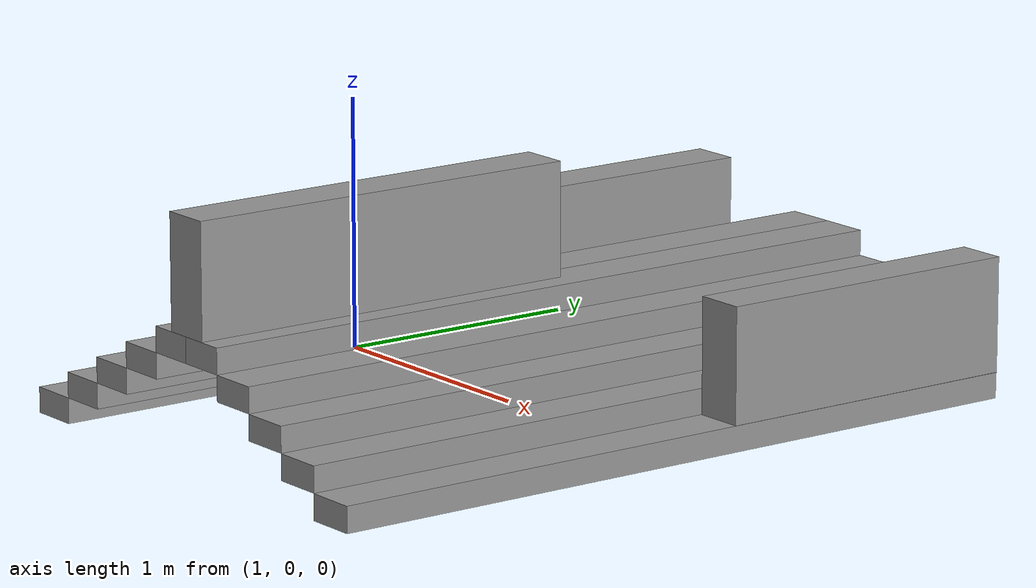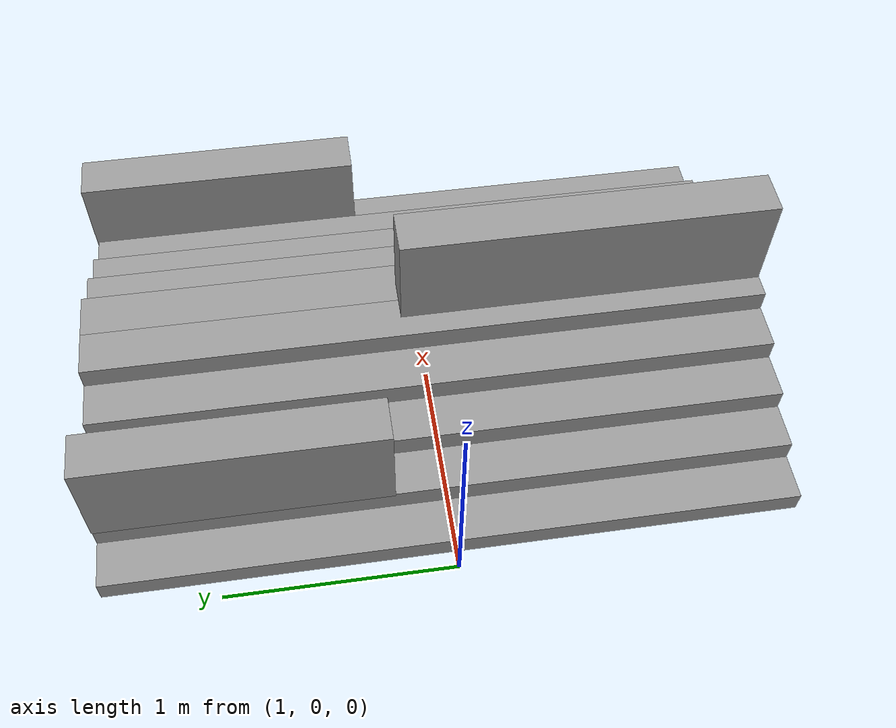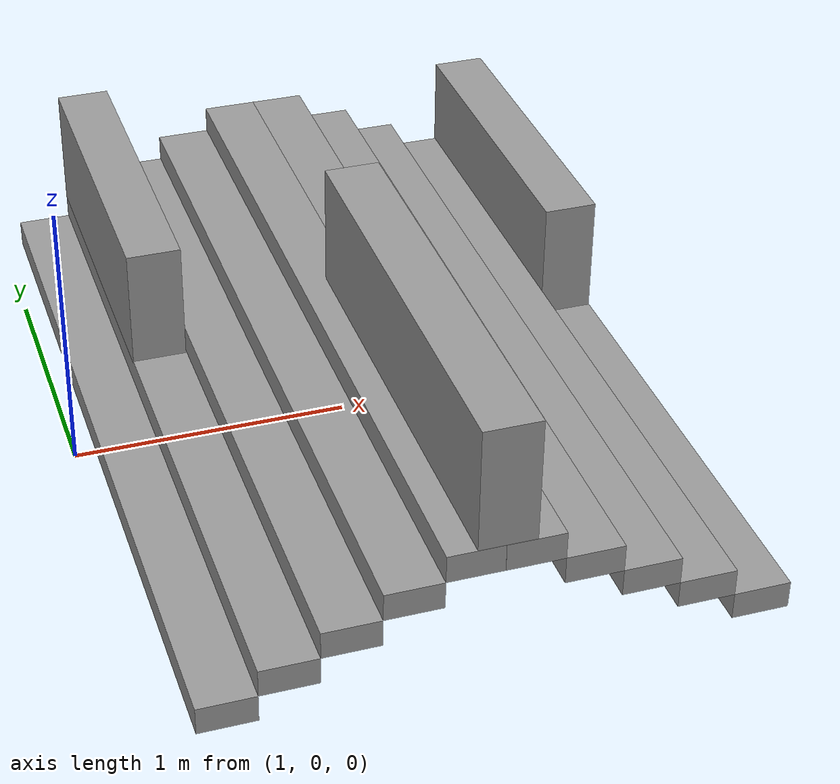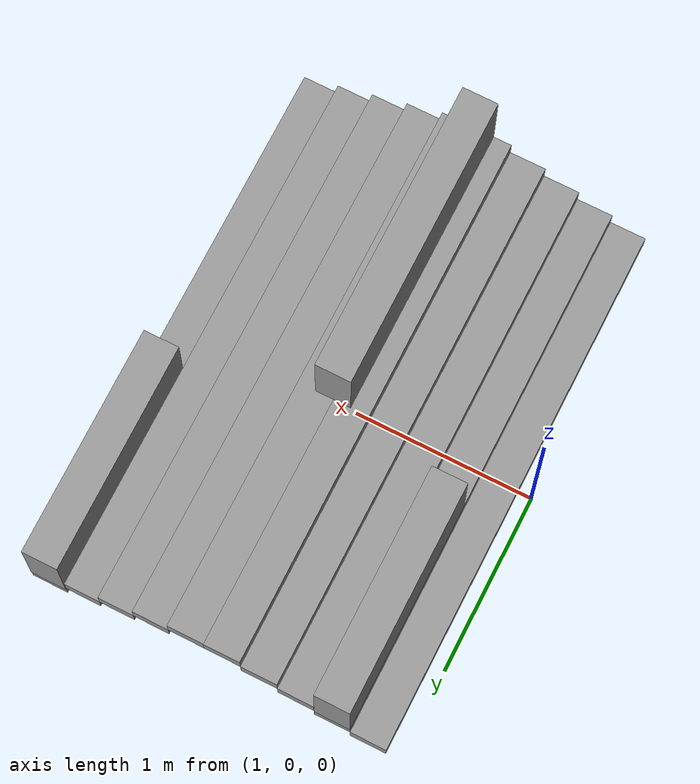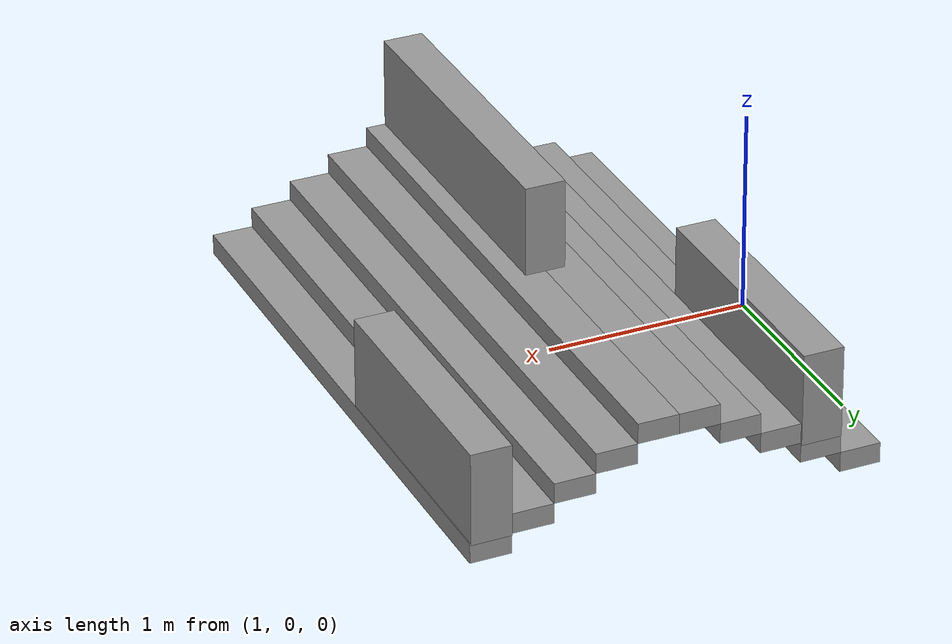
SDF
<?xml version='1.0'?>
<sdf version='1.7'>
  <model name='stairs_obstacle'>
    <link name='Stairs_2'>
      <self_collide>0</self_collide>
      <enable_wind>0</enable_wind>
      <kinematic>0</kinematic>
      <pose>0 0 0 0 -0 0</pose>
      <visual name='Stairs_2_Visual_0'>
        <pose>1.175 -0 0.05 0 -0 1.5708</pose>
        <geometry>
          <box>
            <size>3 0.2 0.1</size>
          </box>
        </geometry>
        <material>
          <script>
            <uri>file://media/materials/scripts/gazebo.material</uri>
            <name>Gazebo/Grey</name>
          </script>
          <ambient>1 1 1 1</ambient>
          <shader type='pixel'/>
        </material>
        <meta>
          <layer>0</layer>
        </meta>
        <transparency>0</transparency>
        <cast_shadows>1</cast_shadows>
      </visual>
      <visual name='Stairs_2_Visual_4'>
        <pose>1.975 0 0.45 0 -0 1.5708</pose>
        <geometry>
          <box>
            <size>3 0.2 0.1</size>
          </box>
        </geometry>
        <material>
          <script>
            <uri>file://media/materials/scripts/gazebo.material</uri>
            <name>Gazebo/Grey</name>
          </script>
          <ambient>1 1 1 1</ambient>
          <shader type='pixel'/>
        </material>
        <meta>
          <layer>0</layer>
        </meta>
        <transparency>0</transparency>
        <cast_shadows>1</cast_shadows>
      </visual>
      <visual name='Stairs_2_Visual_2'>
        <pose>1.575 -0 0.25 0 -0 1.5708</pose>
        <geometry>
          <box>
            <size>3 0.2 0.1</size>
          </box>
        </geometry>
        <material>
          <script>
            <uri>file://media/materials/scripts/gazebo.material</uri>
            <name>Gazebo/Grey</name>
          </script>
          <ambient>1 1 1 1</ambient>
          <shader type='pixel'/>
        </material>
        <meta>
          <layer>0</layer>
        </meta>
        <transparency>0</transparency>
        <cast_shadows>1</cast_shadows>
      </visual>
      <visual name='Stairs_2_Visual_1'>
        <pose>1.375 -0 0.15 0 -0 1.5708</pose>
        <geometry>
          <box>
            <size>3 0.2 0.1</size>
          </box>
        </geometry>
        <material>
          <script>
            <uri>file://media/materials/scripts/gazebo.material</uri>
            <name>Gazebo/Grey</name>
          </script>
          <ambient>1 1 1 1</ambient>
          <shader type='pixel'/>
        </material>
        <meta>
          <layer>0</layer>
        </meta>
        <transparency>0</transparency>
        <cast_shadows>1</cast_shadows>
      </visual>
      <visual name='Stairs_2_Visual_3'>
        <pose>1.775 -0 0.35 0 -0 1.5708</pose>
        <geometry>
          <box>
            <size>3 0.2 0.1</size>
          </box>
        </geometry>
        <material>
          <script>
            <uri>file://media/materials/scripts/gazebo.material</uri>
            <name>Gazebo/Grey</name>
          </script>
          <ambient>1 1 1 1</ambient>
          <shader type='pixel'/>
        </material>
        <meta>
          <layer>0</layer>
        </meta>
        <transparency>0</transparency>
        <cast_shadows>1</cast_shadows>
      </visual>
      <collision name='Stairs_2_Collision_3'>
        <laser_retro>0</laser_retro>
        <max_contacts>10</max_contacts>
        <pose>1.775 0 0.35 0 -0 1.5708</pose>
        <geometry>
          <box>
            <size>3 0.2 0.1</size>
          </box>
        </geometry>
        <surface>
          <friction>
            <ode>
              <mu>1</mu>
              <mu2>1</mu2>
              <fdir1>0 0 0</fdir1>
              <slip1>0</slip1>
              <slip2>0</slip2>
            </ode>
            <torsional>
              <coefficient>1</coefficient>
              <patch_radius>0</patch_radius>
              <surface_radius>0</surface_radius>
              <use_patch_radius>1</use_patch_radius>
              <ode>
                <slip>0</slip>
              </ode>
            </torsional>
          </friction>
          <bounce>
            <restitution_coefficient>0</restitution_coefficient>
            <threshold>1e+06</threshold>
          </bounce>
          <contact>
            <collide_without_contact>0</collide_without_contact>
            <collide_without_contact_bitmask>1</collide_without_contact_bitmask>
            <collide_bitmask>1</collide_bitmask>
            <ode>
              <soft_cfm>0</soft_cfm>
              <soft_erp>0.2</soft_erp>
              <kp>1e+13</kp>
              <kd>1</kd>
              <max_vel>0.01</max_vel>
              <min_depth>0</min_depth>
            </ode>
            <bullet>
              <split_impulse>1</split_impulse>
              <split_impulse_penetration_threshold>-0.01</split_impulse_penetration_threshold>
              <soft_cfm>0</soft_cfm>
              <soft_erp>0.2</soft_erp>
              <kp>1e+13</kp>
              <kd>1</kd>
            </bullet>
          </contact>
        </surface>
      </collision>
      <collision name='Stairs_2_Collision_0'>
        <laser_retro>0</laser_retro>
        <max_contacts>10</max_contacts>
        <pose>1.175 0 0.05 0 -0 1.5708</pose>
        <geometry>
          <box>
            <size>3 0.2 0.1</size>
          </box>
        </geometry>
        <surface>
          <friction>
            <ode>
              <mu>1</mu>
              <mu2>1</mu2>
              <fdir1>0 0 0</fdir1>
              <slip1>0</slip1>
              <slip2>0</slip2>
            </ode>
            <torsional>
              <coefficient>1</coefficient>
              <patch_radius>0</patch_radius>
              <surface_radius>0</surface_radius>
              <use_patch_radius>1</use_patch_radius>
              <ode>
                <slip>0</slip>
              </ode>
            </torsional>
          </friction>
          <bounce>
            <restitution_coefficient>0</restitution_coefficient>
            <threshold>1e+06</threshold>
          </bounce>
          <contact>
            <collide_without_contact>0</collide_without_contact>
            <collide_without_contact_bitmask>1</collide_without_contact_bitmask>
            <collide_bitmask>1</collide_bitmask>
            <ode>
              <soft_cfm>0</soft_cfm>
              <soft_erp>0.2</soft_erp>
              <kp>1e+13</kp>
              <kd>1</kd>
              <max_vel>0.01</max_vel>
              <min_depth>0</min_depth>
            </ode>
            <bullet>
              <split_impulse>1</split_impulse>
              <split_impulse_penetration_threshold>-0.01</split_impulse_penetration_threshold>
              <soft_cfm>0</soft_cfm>
              <soft_erp>0.2</soft_erp>
              <kp>1e+13</kp>
              <kd>1</kd>
            </bullet>
          </contact>
        </surface>
      </collision>
      <collision name='Stairs_2_Collision_2'>
        <laser_retro>0</laser_retro>
        <max_contacts>10</max_contacts>
        <pose>1.575 0 0.25 0 -0 1.5708</pose>
        <geometry>
          <box>
            <size>3 0.2 0.1</size>
          </box>
        </geometry>
        <surface>
          <friction>
            <ode>
              <mu>1</mu>
              <mu2>1</mu2>
              <fdir1>0 0 0</fdir1>
              <slip1>0</slip1>
              <slip2>0</slip2>
            </ode>
            <torsional>
              <coefficient>1</coefficient>
              <patch_radius>0</patch_radius>
              <surface_radius>0</surface_radius>
              <use_patch_radius>1</use_patch_radius>
              <ode>
                <slip>0</slip>
              </ode>
            </torsional>
          </friction>
          <bounce>
            <restitution_coefficient>0</restitution_coefficient>
            <threshold>1e+06</threshold>
          </bounce>
          <contact>
            <collide_without_contact>0</collide_without_contact>
            <collide_without_contact_bitmask>1</collide_without_contact_bitmask>
            <collide_bitmask>1</collide_bitmask>
            <ode>
              <soft_cfm>0</soft_cfm>
              <soft_erp>0.2</soft_erp>
              <kp>1e+13</kp>
              <kd>1</kd>
              <max_vel>0.01</max_vel>
              <min_depth>0</min_depth>
            </ode>
            <bullet>
              <split_impulse>1</split_impulse>
              <split_impulse_penetration_threshold>-0.01</split_impulse_penetration_threshold>
              <soft_cfm>0</soft_cfm>
              <soft_erp>0.2</soft_erp>
              <kp>1e+13</kp>
              <kd>1</kd>
            </bullet>
          </contact>
        </surface>
      </collision>
      <collision name='Stairs_2_Collision_4'>
        <laser_retro>0</laser_retro>
        <max_contacts>10</max_contacts>
        <pose>1.975 0 0.45 0 -0 1.5708</pose>
        <geometry>
          <box>
            <size>3 0.2 0.1</size>
          </box>
        </geometry>
        <surface>
          <friction>
            <ode>
              <mu>1</mu>
              <mu2>1</mu2>
              <fdir1>0 0 0</fdir1>
              <slip1>0</slip1>
              <slip2>0</slip2>
            </ode>
            <torsional>
              <coefficient>1</coefficient>
              <patch_radius>0</patch_radius>
              <surface_radius>0</surface_radius>
              <use_patch_radius>1</use_patch_radius>
              <ode>
                <slip>0</slip>
              </ode>
            </torsional>
          </friction>
          <bounce>
            <restitution_coefficient>0</restitution_coefficient>
            <threshold>1e+06</threshold>
          </bounce>
          <contact>
            <collide_without_contact>0</collide_without_contact>
            <collide_without_contact_bitmask>1</collide_without_contact_bitmask>
            <collide_bitmask>1</collide_bitmask>
            <ode>
              <soft_cfm>0</soft_cfm>
              <soft_erp>0.2</soft_erp>
              <kp>1e+13</kp>
              <kd>1</kd>
              <max_vel>0.01</max_vel>
              <min_depth>0</min_depth>
            </ode>
            <bullet>
              <split_impulse>1</split_impulse>
              <split_impulse_penetration_threshold>-0.01</split_impulse_penetration_threshold>
              <soft_cfm>0</soft_cfm>
              <soft_erp>0.2</soft_erp>
              <kp>1e+13</kp>
              <kd>1</kd>
            </bullet>
          </contact>
        </surface>
      </collision>
      <collision name='Stairs_2_Collision_1'>
        <laser_retro>0</laser_retro>
        <max_contacts>10</max_contacts>
        <pose>1.375 0 0.15 0 -0 1.5708</pose>
        <geometry>
          <box>
            <size>3 0.2 0.1</size>
          </box>
        </geometry>
        <surface>
          <friction>
            <ode>
              <mu>1</mu>
              <mu2>1</mu2>
              <fdir1>0 0 0</fdir1>
              <slip1>0</slip1>
              <slip2>0</slip2>
            </ode>
            <torsional>
              <coefficient>1</coefficient>
              <patch_radius>0</patch_radius>
              <surface_radius>0</surface_radius>
              <use_patch_radius>1</use_patch_radius>
              <ode>
                <slip>0</slip>
              </ode>
            </torsional>
          </friction>
          <bounce>
            <restitution_coefficient>0</restitution_coefficient>
            <threshold>1e+06</threshold>
          </bounce>
          <contact>
            <collide_without_contact>0</collide_without_contact>
            <collide_without_contact_bitmask>1</collide_without_contact_bitmask>
            <collide_bitmask>1</collide_bitmask>
            <ode>
              <soft_cfm>0</soft_cfm>
              <soft_erp>0.2</soft_erp>
              <kp>1e+13</kp>
              <kd>1</kd>
              <max_vel>0.01</max_vel>
              <min_depth>0</min_depth>
            </ode>
            <bullet>
              <split_impulse>1</split_impulse>
              <split_impulse_penetration_threshold>-0.01</split_impulse_penetration_threshold>
              <soft_cfm>0</soft_cfm>
              <soft_erp>0.2</soft_erp>
              <kp>1e+13</kp>
              <kd>1</kd>
            </bullet>
          </contact>
        </surface>
      </collision>
    </link>
    <link name='link_0'>
      <inertial>
        <mass>0.114138</mass>
        <inertia>
          <ixx>0.0173109</ixx>
          <ixy>0</ixy>
          <ixz>0</ixz>
          <iyy>0.00234433</iyy>
          <iyz>0</iyz>
          <izz>0.0157064</izz>
        </inertia>
        <pose>0 0 0 0 -0 0</pose>
      </inertial>
      <pose>1.37352 0.868087 0.415609 0 -0 0</pose>
      <gravity>1</gravity>
      <self_collide>0</self_collide>
      <kinematic>0</kinematic>
      <enable_wind>0</enable_wind>
      <visual name='visual'>
        <pose>0 0 0 0 -0 0</pose>
        <geometry>
          <box>
            <size>0.197206 1.26981 0.455612</size>
          </box>
        </geometry>
        <material>
          <lighting>1</lighting>
          <script>
            <uri>file://media/materials/scripts/gazebo.material</uri>
            <name>Gazebo/Grey</name>
          </script>
          <shader type='pixel'>
            <normal_map>__default__</normal_map>
          </shader>
          <ambient>0.3 0.3 0.3 1</ambient>
          <diffuse>0.7 0.7 0.7 1</diffuse>
          <specular>0.01 0.01 0.01 1</specular>
          <emissive>0 0 0 1</emissive>
        </material>
        <transparency>0</transparency>
        <cast_shadows>1</cast_shadows>
      </visual>
      <collision name='collision'>
        <laser_retro>0</laser_retro>
        <max_contacts>10</max_contacts>
        <pose>0 0 0 0 -0 0</pose>
        <geometry>
          <box>
            <size>0.197206 1.26981 0.455612</size>
          </box>
        </geometry>
        <surface>
          <friction>
            <ode>
              <mu>1</mu>
              <mu2>1</mu2>
              <fdir1>0 0 0</fdir1>
              <slip1>0</slip1>
              <slip2>0</slip2>
            </ode>
            <torsional>
              <coefficient>1</coefficient>
              <patch_radius>0</patch_radius>
              <surface_radius>0</surface_radius>
              <use_patch_radius>1</use_patch_radius>
              <ode>
                <slip>0</slip>
              </ode>
            </torsional>
          </friction>
          <bounce>
            <restitution_coefficient>0</restitution_coefficient>
            <threshold>1e+06</threshold>
          </bounce>
          <contact>
            <collide_without_contact>0</collide_without_contact>
            <collide_without_contact_bitmask>1</collide_without_contact_bitmask>
            <collide_bitmask>1</collide_bitmask>
            <ode>
              <soft_cfm>0</soft_cfm>
              <soft_erp>0.2</soft_erp>
              <kp>1e+13</kp>
              <kd>1</kd>
              <max_vel>0.01</max_vel>
              <min_depth>0</min_depth>
            </ode>
            <bullet>
              <split_impulse>1</split_impulse>
              <split_impulse_penetration_threshold>-0.01</split_impulse_penetration_threshold>
              <soft_cfm>0</soft_cfm>
              <soft_erp>0.2</soft_erp>
              <kp>1e+13</kp>
              <kd>1</kd>
            </bullet>
          </contact>
        </surface>
      </collision>
    </link>
    <link name='link_0_clone'>
      <inertial>
        <mass>0.114138</mass>
        <inertia>
          <ixx>0.0173109</ixx>
          <ixy>0</ixy>
          <ixz>0</ixz>
          <iyy>0.00234433</iyy>
          <iyz>0</iyz>
          <izz>0.0157064</izz>
        </inertia>
        <pose>0 0 0 0 -0 0</pose>
      </inertial>
      <pose>2.97187 0.869008 0.32142 0 -0 0</pose>
      <gravity>1</gravity>
      <self_collide>0</self_collide>
      <kinematic>0</kinematic>
      <enable_wind>0</enable_wind>
      <visual name='visual'>
        <pose>0 0 0 0 -0 0</pose>
        <geometry>
          <box>
            <size>0.197206 1.26981 0.455612</size>
          </box>
        </geometry>
        <material>
          <lighting>1</lighting>
          <script>
            <uri>file://media/materials/scripts/gazebo.material</uri>
            <name>Gazebo/Grey</name>
          </script>
          <shader type='pixel'>
            <normal_map>__default__</normal_map>
          </shader>
          <ambient>0.3 0.3 0.3 1</ambient>
          <diffuse>0.7 0.7 0.7 1</diffuse>
          <specular>0.01 0.01 0.01 1</specular>
          <emissive>0 0 0 1</emissive>
        </material>
        <transparency>0</transparency>
        <cast_shadows>1</cast_shadows>
      </visual>
      <collision name='collision'>
        <laser_retro>0</laser_retro>
        <max_contacts>10</max_contacts>
        <pose>0 0 0 0 -0 0</pose>
        <geometry>
          <box>
            <size>0.197206 1.26981 0.455612</size>
          </box>
        </geometry>
        <surface>
          <friction>
            <ode>
              <mu>1</mu>
              <mu2>1</mu2>
              <fdir1>0 0 0</fdir1>
              <slip1>0</slip1>
              <slip2>0</slip2>
            </ode>
            <torsional>
              <coefficient>1</coefficient>
              <patch_radius>0</patch_radius>
              <surface_radius>0</surface_radius>
              <use_patch_radius>1</use_patch_radius>
              <ode>
                <slip>0</slip>
              </ode>
            </torsional>
          </friction>
          <bounce>
            <restitution_coefficient>0</restitution_coefficient>
            <threshold>1e+06</threshold>
          </bounce>
          <contact>
            <collide_without_contact>0</collide_without_contact>
            <collide_without_contact_bitmask>1</collide_without_contact_bitmask>
            <collide_bitmask>1</collide_bitmask>
            <ode>
              <soft_cfm>0</soft_cfm>
              <soft_erp>0.2</soft_erp>
              <kp>1e+13</kp>
              <kd>1</kd>
              <max_vel>0.01</max_vel>
              <min_depth>0</min_depth>
            </ode>
            <bullet>
              <split_impulse>1</split_impulse>
              <split_impulse_penetration_threshold>-0.01</split_impulse_penetration_threshold>
              <soft_cfm>0</soft_cfm>
              <soft_erp>0.2</soft_erp>
              <kp>1e+13</kp>
              <kd>1</kd>
            </bullet>
          </contact>
        </surface>
      </collision>
    </link>
    <link name='link_0_clone_0'>
      <inertial>
        <mass>0.14497</mass>
        <inertia>
          <ixx>0.0339329</ixx>
          <ixy>0</ixy>
          <ixz>0</ixz>
          <iyy>0.00297759</iyy>
          <iyz>0</iyz>
          <izz>0.0318949</izz>
        </inertia>
        <pose>0 0 0 0 -0 0</pose>
      </inertial>
      <pose>2.07448 -0.691915 0.717551 0 -0 0</pose>
      <gravity>1</gravity>
      <self_collide>0</self_collide>
      <kinematic>0</kinematic>
      <enable_wind>0</enable_wind>
      <visual name='visual'>
        <pose>0 0 0 0 -0 0</pose>
        <geometry>
          <box>
            <size>0.197206 1.61283 0.455612</size>
          </box>
        </geometry>
        <material>
          <lighting>1</lighting>
          <script>
            <uri>file://media/materials/scripts/gazebo.material</uri>
            <name>Gazebo/Grey</name>
          </script>
          <shader type='pixel'>
            <normal_map>__default__</normal_map>
          </shader>
          <ambient>0.3 0.3 0.3 1</ambient>
          <diffuse>0.7 0.7 0.7 1</diffuse>
          <specular>0.01 0.01 0.01 1</specular>
          <emissive>0 0 0 1</emissive>
        </material>
        <transparency>0</transparency>
        <cast_shadows>1</cast_shadows>
      </visual>
      <collision name='collision'>
        <laser_retro>0</laser_retro>
        <max_contacts>10</max_contacts>
        <pose>0 0 0 0 -0 0</pose>
        <geometry>
          <box>
            <size>0.197206 1.61283 0.455612</size>
          </box>
        </geometry>
        <surface>
          <friction>
            <ode>
              <mu>1</mu>
              <mu2>1</mu2>
              <fdir1>0 0 0</fdir1>
              <slip1>0</slip1>
              <slip2>0</slip2>
            </ode>
            <torsional>
              <coefficient>1</coefficient>
              <patch_radius>0</patch_radius>
              <surface_radius>0</surface_radius>
              <use_patch_radius>1</use_patch_radius>
              <ode>
                <slip>0</slip>
              </ode>
            </torsional>
          </friction>
          <bounce>
            <restitution_coefficient>0</restitution_coefficient>
            <threshold>1e+06</threshold>
          </bounce>
          <contact>
            <collide_without_contact>0</collide_without_contact>
            <collide_without_contact_bitmask>1</collide_without_contact_bitmask>
            <collide_bitmask>1</collide_bitmask>
            <ode>
              <soft_cfm>0</soft_cfm>
              <soft_erp>0.2</soft_erp>
              <kp>1e+13</kp>
              <kd>1</kd>
              <max_vel>0.01</max_vel>
              <min_depth>0</min_depth>
            </ode>
            <bullet>
              <split_impulse>1</split_impulse>
              <split_impulse_penetration_threshold>-0.01</split_impulse_penetration_threshold>
              <soft_cfm>0</soft_cfm>
              <soft_erp>0.2</soft_erp>
              <kp>1e+13</kp>
              <kd>1</kd>
            </bullet>
          </contact>
        </surface>
      </collision>
    </link>
    <model name='stairs'>
      <pose>4.14673 -0.003522 0 0 -0 3.14016</pose>
      <link name='Stairs_2'>
        <visual name='Stairs_2_Visual_0'>
          <pose>1.175 -0 0.05 0 -0 1.5708</pose>
          <geometry>
            <box>
              <size>3 0.2 0.1</size>
            </box>
          </geometry>
          <material>
            <script>
              <uri>file://media/materials/scripts/gazebo.material</uri>
              <name>Gazebo/Grey</name>
            </script>
            <ambient>1 1 1 1</ambient>
          </material>
          <meta>
            <layer>0</layer>
          </meta>
        </visual>
        <collision name='Stairs_2_Collision_0'>
          <geometry>
            <box>
              <size>3 0.2 0.1</size>
            </box>
          </geometry>
          <pose>1.175 -0 0.05 0 -0 1.5708</pose>
          <max_contacts>10</max_contacts>
          <surface>
            <contact>
              <ode/>
            </contact>
            <bounce/>
            <friction>
              <torsional>
                <ode/>
              </torsional>
              <ode/>
            </friction>
          </surface>
        </collision>
        <visual name='Stairs_2_Visual_1'>
          <pose>1.375 -0 0.15 0 -0 1.5708</pose>
          <geometry>
            <box>
              <size>3 0.2 0.1</size>
            </box>
          </geometry>
          <material>
            <script>
              <uri>file://media/materials/scripts/gazebo.material</uri>
              <name>Gazebo/Grey</name>
            </script>
            <ambient>1 1 1 1</ambient>
          </material>
          <meta>
            <layer>0</layer>
          </meta>
        </visual>
        <collision name='Stairs_2_Collision_1'>
          <geometry>
            <box>
              <size>3 0.2 0.1</size>
            </box>
          </geometry>
          <pose>1.375 -0 0.15 0 -0 1.5708</pose>
          <max_contacts>10</max_contacts>
          <surface>
            <contact>
              <ode/>
            </contact>
            <bounce/>
            <friction>
              <torsional>
                <ode/>
              </torsional>
              <ode/>
            </friction>
          </surface>
        </collision>
        <visual name='Stairs_2_Visual_2'>
          <pose>1.575 -0 0.25 0 -0 1.5708</pose>
          <geometry>
            <box>
              <size>3 0.2 0.1</size>
            </box>
          </geometry>
          <material>
            <script>
              <uri>file://media/materials/scripts/gazebo.material</uri>
              <name>Gazebo/Grey</name>
            </script>
            <ambient>1 1 1 1</ambient>
          </material>
          <meta>
            <layer>0</layer>
          </meta>
        </visual>
        <collision name='Stairs_2_Collision_2'>
          <geometry>
            <box>
              <size>3 0.2 0.1</size>
            </box>
          </geometry>
          <pose>1.575 -0 0.25 0 -0 1.5708</pose>
          <max_contacts>10</max_contacts>
          <surface>
            <contact>
              <ode/>
            </contact>
            <bounce/>
            <friction>
              <torsional>
                <ode/>
              </torsional>
              <ode/>
            </friction>
          </surface>
        </collision>
        <visual name='Stairs_2_Visual_3'>
          <pose>1.775 -0 0.35 0 -0 1.5708</pose>
          <geometry>
            <box>
              <size>3 0.2 0.1</size>
            </box>
          </geometry>
          <material>
            <script>
              <uri>file://media/materials/scripts/gazebo.material</uri>
              <name>Gazebo/Grey</name>
            </script>
            <ambient>1 1 1 1</ambient>
          </material>
          <meta>
            <layer>0</layer>
          </meta>
        </visual>
        <collision name='Stairs_2_Collision_3'>
          <geometry>
            <box>
              <size>3 0.2 0.1</size>
            </box>
          </geometry>
          <pose>1.775 -0 0.35 0 -0 1.5708</pose>
          <max_contacts>10</max_contacts>
          <surface>
            <contact>
              <ode/>
            </contact>
            <bounce/>
            <friction>
              <torsional>
                <ode/>
              </torsional>
              <ode/>
            </friction>
          </surface>
        </collision>
        <visual name='Stairs_2_Visual_4'>
          <pose>1.975 0 0.45 0 -0 1.5708</pose>
          <geometry>
            <box>
              <size>3 0.2 0.1</size>
            </box>
          </geometry>
          <material>
            <script>
              <uri>file://media/materials/scripts/gazebo.material</uri>
              <name>Gazebo/Grey</name>
            </script>
            <ambient>1 1 1 1</ambient>
          </material>
          <meta>
            <layer>0</layer>
          </meta>
        </visual>
        <collision name='Stairs_2_Collision_4'>
          <geometry>
            <box>
              <size>3 0.2 0.1</size>
            </box>
          </geometry>
          <pose>1.975 0 0.45 0 -0 1.5708</pose>
          <max_contacts>10</max_contacts>
          <surface>
            <contact>
              <ode/>
            </contact>
            <bounce/>
            <friction>
              <torsional>
                <ode/>
              </torsional>
              <ode/>
            </friction>
          </surface>
        </collision>
        <self_collide>0</self_collide>
        <enable_wind>0</enable_wind>
        <kinematic>0</kinematic>
      </link>
      <static>1</static>
    </model>
    <static>1</static>
    <allow_auto_disable>1</allow_auto_disable>
  </model>
</sdf>
